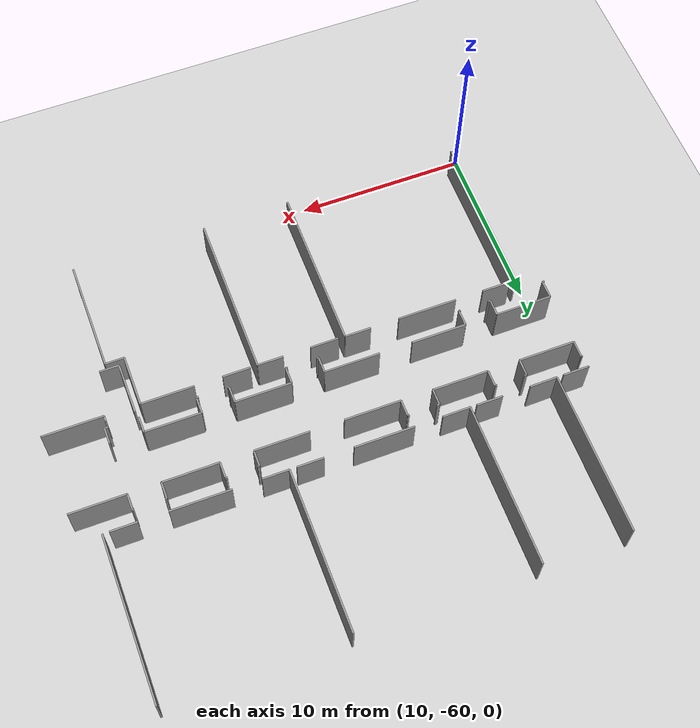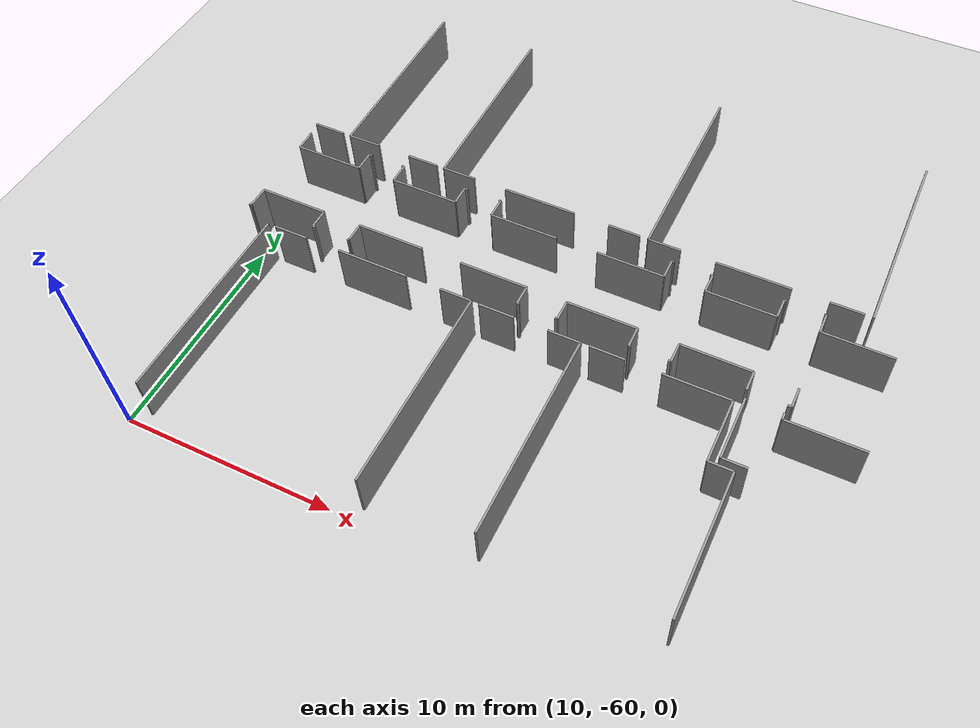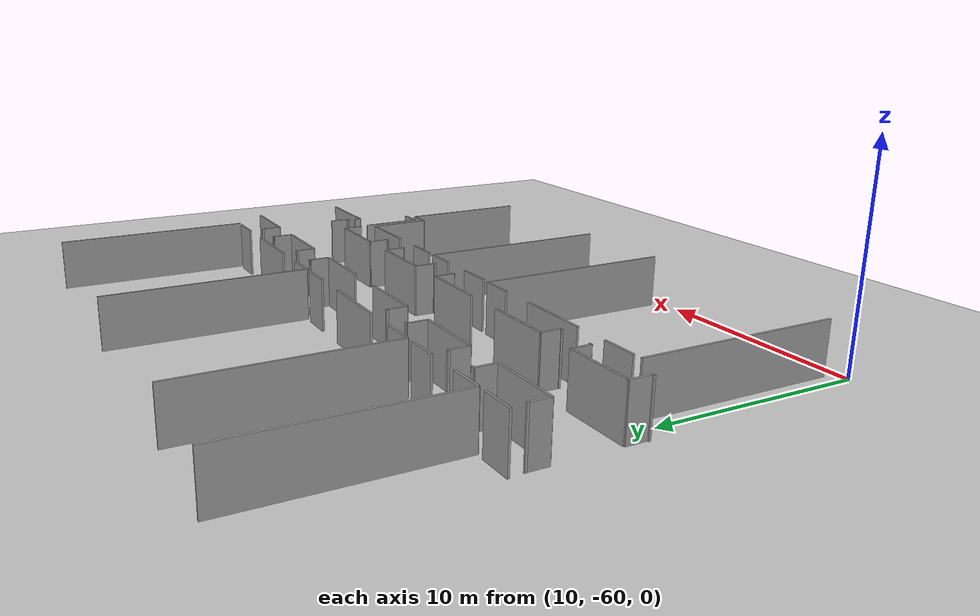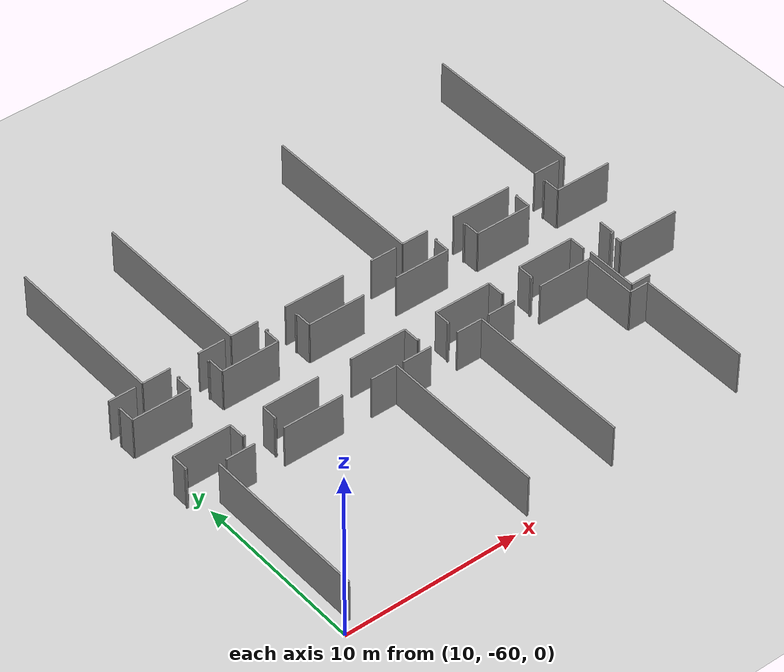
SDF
<sdf version="1.6">
 <world name="default">
  <model name="ground_plane">
   <static>1</static>
   <link name="link">
    <collision name="collision">
     <geometry><plane><normal>0 0 1</normal><size>100 100</size></plane></geometry>
     <surface><friction><ode><mu>100</mu><mu2>50</mu2></ode></friction></surface>
    </collision>
    <visual name="visual">
     <cast_shadows>0</cast_shadows>
     <geometry><plane><normal>0 0 1</normal><size>100 100</size></plane></geometry>
     <material>
      <script><uri>file://media/materials/scripts/gazebo.material</uri><name>Gazebo/Grey</name></script>
     </material>
    </visual>
   </link>
  </model>
  <model name="0510045922_A-40">
   <static>1</static>
   <link name="Wall_1510">
    <collision name="Wall_1510_Collision">
     <geometry><box><size>9.59369638432 0.1 2.5</size></box></geometry>
     <pose>4.79684819216 0 1.25 0 0 0</pose>
    </collision>
    <visual name="Wall_1510_Visual">
     <pose>4.79684819216 0 1.25 0 0 0</pose>
     <geometry><box><size>9.59369638432 0.1 2.5</size></box></geometry>
     <material>
      <script><uri>file://media/materials/scripts/gazebo.material</uri><name>Gazebo/Grey</name></script>
      <ambient>1 1 1 1</ambient>
     </material>
    </visual>
    <pose>144.869593951 -151.004232065 0 0 0 -1.57079632679</pose>
   </link>
   <link name="Wall_1514">
    <collision name="Wall_1514_Collision">
     <geometry><box><size>1.66283281439 0.1 2.5</size></box></geometry>
     <pose>0.831416407193 0 1.25 0 0 0</pose>
    </collision>
    <visual name="Wall_1514_Visual">
     <pose>0.831416407193 0 1.25 0 0 0</pose>
     <geometry><box><size>1.66283281439 0.1 2.5</size></box></geometry>
     <material>
      <script><uri>file://media/materials/scripts/gazebo.material</uri><name>Gazebo/Grey</name></script>
      <ambient>1 1 1 1</ambient>
     </material>
    </visual>
    <pose>145.278312258 -150.984151998 0 0 0 0.0</pose>
   </link>
   <link name="Wall_1515">
    <collision name="Wall_1515_Collision">
     <geometry><box><size>3.49037300629 0.1 2.5</size></box></geometry>
     <pose>1.74518650315 0 1.25 0 0 0</pose>
    </collision>
    <visual name="Wall_1515_Visual">
     <pose>1.74518650315 0 1.25 0 0 0</pose>
     <geometry><box><size>3.49037300629 0.1 2.5</size></box></geometry>
     <material>
      <script><uri>file://media/materials/scripts/gazebo.material</uri><name>Gazebo/Grey</name></script>
      <ambient>1 1 1 1</ambient>
     </material>
    </visual>
    <pose>148.626345555 -150.984151998 0 0 0 0.0</pose>
   </link>
   <link name="Wall_1516">
    <collision name="Wall_1516_Collision">
     <geometry><box><size>1.54845269111 0.1 2.5</size></box></geometry>
     <pose>0.774226345555 0 1.25 0 0 0</pose>
    </collision>
    <visual name="Wall_1516_Visual">
     <pose>0.774226345555 0 1.25 0 0 0</pose>
     <geometry><box><size>1.54845269111 0.1 2.5</size></box></geometry>
     <material>
      <script><uri>file://media/materials/scripts/gazebo.material</uri><name>Gazebo/Grey</name></script>
      <ambient>1 1 1 1</ambient>
     </material>
    </visual>
    <pose>153.827845206 -150.984151998 0 0 0 0.0</pose>
   </link>
   <link name="Wall_1517">
    <collision name="Wall_1517_Collision">
     <geometry><box><size>9.62546864078 0.1 2.5</size></box></geometry>
     <pose>4.81273432039 0 1.25 0 0 0</pose>
    </collision>
    <visual name="Wall_1517_Visual">
     <pose>4.81273432039 0 1.25 0 0 0</pose>
     <geometry><box><size>9.62546864078 0.1 2.5</size></box></geometry>
     <material>
      <script><uri>file://media/materials/scripts/gazebo.material</uri><name>Gazebo/Grey</name></script>
      <ambient>1 1 1 1</ambient>
     </material>
    </visual>
    <pose>155.376297897 -150.984151998 0 0 0 -1.57079632679</pose>
   </link>
   <link name="Wall_1522">
    <collision name="Wall_1522_Collision">
     <geometry><box><size>1.67935438775 0.1 2.5</size></box></geometry>
     <pose>0.839677193874 0 1.25 0 0 0</pose>
    </collision>
    <visual name="Wall_1522_Visual">
     <pose>0.839677193874 0 1.25 0 0 0</pose>
     <geometry><box><size>1.67935438775 0.1 2.5</size></box></geometry>
     <material>
      <script><uri>file://media/materials/scripts/gazebo.material</uri><name>Gazebo/Grey</name></script>
      <ambient>1 1 1 1</ambient>
     </material>
    </visual>
    <pose>155.755785728 -151.005757133 0 0 0 0.0</pose>
   </link>
   <link name="Wall_1523">
    <collision name="Wall_1523_Collision">
     <geometry><box><size>1.52684755671 0.1 2.5</size></box></geometry>
     <pose>0.763423778357 0 1.25 0 0 0</pose>
    </collision>
    <visual name="Wall_1523_Visual">
     <pose>0.763423778357 0 1.25 0 0 0</pose>
     <geometry><box><size>1.52684755671 0.1 2.5</size></box></geometry>
     <material>
      <script><uri>file://media/materials/scripts/gazebo.material</uri><name>Gazebo/Grey</name></script>
      <ambient>1 1 1 1</ambient>
     </material>
    </visual>
    <pose>159.054762661 -151.005757133 0 0 0 0.0</pose>
   </link>
   <link name="Wall_1524">
    <collision name="Wall_1524_Collision">
     <geometry><box><size>9.59623816483 0.1 2.5</size></box></geometry>
     <pose>4.79811908242 0 1.25 0 0 0</pose>
    </collision>
    <visual name="Wall_1524_Visual">
     <pose>4.79811908242 0 1.25 0 0 0</pose>
     <geometry><box><size>9.59623816483 0.1 2.5</size></box></geometry>
     <material>
      <script><uri>file://media/materials/scripts/gazebo.material</uri><name>Gazebo/Grey</name></script>
      <ambient>1 1 1 1</ambient>
     </material>
    </visual>
    <pose>160.581610218 -151.005757133 0 0 0 -1.57079632679</pose>
   </link>
   <link name="Wall_1528">
    <collision name="Wall_1528_Collision">
     <geometry><box><size>1.63029802377 0.1 2.5</size></box></geometry>
     <pose>0.815149011883 0 1.25 0 0 0</pose>
    </collision>
    <visual name="Wall_1528_Visual">
     <pose>0.815149011883 0 1.25 0 0 0</pose>
     <geometry><box><size>1.63029802377 0.1 2.5</size></box></geometry>
     <material>
      <script><uri>file://media/materials/scripts/gazebo.material</uri><name>Gazebo/Grey</name></script>
      <ambient>1 1 1 1</ambient>
     </material>
    </visual>
    <pose>160.998716401 -150.995590011 0 0 0 0.0</pose>
   </link>
   <link name="Wall_1529">
    <collision name="Wall_1529_Collision">
     <geometry><box><size>3.11469784584 0.1 2.5</size></box></geometry>
     <pose>1.55734892292 0 1.25 0 0 0</pose>
    </collision>
    <visual name="Wall_1529_Visual">
     <pose>1.55734892292 0 1.25 0 0 0</pose>
     <geometry><box><size>3.11469784584 0.1 2.5</size></box></geometry>
     <material>
      <script><uri>file://media/materials/scripts/gazebo.material</uri><name>Gazebo/Grey</name></script>
      <ambient>1 1 1 1</ambient>
     </material>
    </visual>
    <pose>164.271512995 -150.995590011 0 0 0 0.0</pose>
   </link>
   <link name="Wall_1530">
    <collision name="Wall_1530_Collision">
     <geometry><box><size>3.04835737434 0.1 2.5</size></box></geometry>
     <pose>1.52417868717 0 1.25 0 0 0</pose>
    </collision>
    <visual name="Wall_1530_Visual">
     <pose>1.52417868717 0 1.25 0 0 0</pose>
     <geometry><box><size>3.04835737434 0.1 2.5</size></box></geometry>
     <material>
      <script><uri>file://media/materials/scripts/gazebo.material</uri><name>Gazebo/Grey</name></script>
      <ambient>1 1 1 1</ambient>
     </material>
    </visual>
    <pose>167.386210841 -150.995590011 0 0 0 -1.57079632679</pose>
   </link>
   <link name="Wall_1531">
    <collision name="Wall_1531_Collision">
     <geometry><box><size>1.11787507149 0.1 2.5</size></box></geometry>
     <pose>0.558937535744 0 1.25 0 0 0</pose>
    </collision>
    <visual name="Wall_1531_Visual">
     <pose>0.558937535744 0 1.25 0 0 0</pose>
     <geometry><box><size>1.11787507149 0.1 2.5</size></box></geometry>
     <material>
      <script><uri>file://media/materials/scripts/gazebo.material</uri><name>Gazebo/Grey</name></script>
      <ambient>1 1 1 1</ambient>
     </material>
    </visual>
    <pose>167.386210841 -154.043947385 0 0 0 0.0</pose>
   </link>
   <link name="Wall_1532">
    <collision name="Wall_1532_Collision">
     <geometry><box><size>6.53923873674 0.1 2.5</size></box></geometry>
     <pose>3.26961936837 0 1.25 0 0 0</pose>
    </collision>
    <visual name="Wall_1532_Visual">
     <pose>3.26961936837 0 1.25 0 0 0</pose>
     <geometry><box><size>6.53923873674 0.1 2.5</size></box></geometry>
     <material>
      <script><uri>file://media/materials/scripts/gazebo.material</uri><name>Gazebo/Grey</name></script>
      <ambient>1 1 1 1</ambient>
     </material>
    </visual>
    <pose>168.504085912 -154.043947385 0 0 0 -1.57079632679</pose>
   </link>
   <link name="Wall_1537">
    <collision name="Wall_1537_Collision">
     <geometry><box><size>1.14837643769 0.1 2.5</size></box></geometry>
     <pose>0.574188218847 0 1.25 0 0 0</pose>
    </collision>
    <visual name="Wall_1537_Visual">
     <pose>0.574188218847 0 1.25 0 0 0</pose>
     <geometry><box><size>1.14837643769 0.1 2.5</size></box></geometry>
     <material>
      <script><uri>file://media/materials/scripts/gazebo.material</uri><name>Gazebo/Grey</name></script>
      <ambient>1 1 1 1</ambient>
     </material>
    </visual>
    <pose>168.943813942 -153.682760374 0 0 0 3.14159265359</pose>
   </link>
   <link name="Wall_1538">
    <collision name="Wall_1538_Collision">
     <geometry><box><size>3.01760183008 0.1 2.5</size></box></geometry>
     <pose>1.50880091504 0 1.25 0 0 0</pose>
    </collision>
    <visual name="Wall_1538_Visual">
     <pose>1.50880091504 0 1.25 0 0 0</pose>
     <geometry><box><size>3.01760183008 0.1 2.5</size></box></geometry>
     <material>
      <script><uri>file://media/materials/scripts/gazebo.material</uri><name>Gazebo/Grey</name></script>
      <ambient>1 1 1 1</ambient>
     </material>
    </visual>
    <pose>167.795437504 -153.682760374 0 0 0 1.57079632679</pose>
   </link>
   <link name="Wall_1539">
    <collision name="Wall_1539_Collision">
     <geometry><box><size>0.326364618415 0.1 2.5</size></box></geometry>
     <pose>0.163182309208 0 1.25 0 0 0</pose>
    </collision>
    <visual name="Wall_1539_Visual">
     <pose>0.163182309208 0 1.25 0 0 0</pose>
     <geometry><box><size>0.326364618415 0.1 2.5</size></box></geometry>
     <material>
      <script><uri>file://media/materials/scripts/gazebo.material</uri><name>Gazebo/Grey</name></script>
      <ambient>1 1 1 1</ambient>
     </material>
    </visual>
    <pose>169.454966004 -150.665158544 0 0 0 -1.57079632679</pose>
   </link>
   <link name="Wall_1540">
    <collision name="Wall_1540_Collision">
     <geometry><box><size>3.56865984622 0.1 2.5</size></box></geometry>
     <pose>1.78432992311 0 1.25 0 0 0</pose>
    </collision>
    <visual name="Wall_1540_Visual">
     <pose>1.78432992311 0 1.25 0 0 0</pose>
     <geometry><box><size>3.56865984622 0.1 2.5</size></box></geometry>
     <material>
      <script><uri>file://media/materials/scripts/gazebo.material</uri><name>Gazebo/Grey</name></script>
      <ambient>1 1 1 1</ambient>
     </material>
    </visual>
    <pose>169.454966004 -150.991523162 0 0 0 0.0</pose>
   </link>
   <link name="Wall_1551">
    <collision name="Wall_1551_Collision">
     <geometry><box><size>9.61657240897 0.1 2.5</size></box></geometry>
     <pose>4.80828620449 0 1.25 0 0 0</pose>
    </collision>
    <visual name="Wall_1551_Visual">
     <pose>4.80828620449 0 1.25 0 0 0</pose>
     <geometry><box><size>9.61657240897 0.1 2.5</size></box></geometry>
     <material>
      <script><uri>file://media/materials/scripts/gazebo.material</uri><name>Gazebo/Grey</name></script>
      <ambient>1 1 1 1</ambient>
     </material>
    </visual>
    <pose>171.458651585 -144.473127025 0 0 0 1.57079632679</pose>
   </link>
   <link name="Wall_1559">
    <collision name="Wall_1559_Collision">
     <geometry><box><size>9.59242549406 0.1 2.5</size></box></geometry>
     <pose>4.79621274703 0 1.25 0 0 0</pose>
    </collision>
    <visual name="Wall_1559_Visual">
     <pose>4.79621274703 0 1.25 0 0 0</pose>
     <geometry><box><size>9.59242549406 0.1 2.5</size></box></geometry>
     <material>
      <script><uri>file://media/materials/scripts/gazebo.material</uri><name>Gazebo/Grey</name></script>
      <ambient>1 1 1 1</ambient>
     </material>
    </visual>
    <pose>161.023371672 -144.456097096 0 0 0 1.57079632679</pose>
   </link>
   <link name="Wall_1564">
    <collision name="Wall_1564_Collision">
     <geometry><box><size>1.5759039207 0.1 2.5</size></box></geometry>
     <pose>0.787951960348 0 1.25 0 0 0</pose>
    </collision>
    <visual name="Wall_1564_Visual">
     <pose>0.787951960348 0 1.25 0 0 0</pose>
     <geometry><box><size>1.5759039207 0.1 2.5</size></box></geometry>
     <material>
      <script><uri>file://media/materials/scripts/gazebo.material</uri><name>Gazebo/Grey</name></script>
      <ambient>1 1 1 1</ambient>
     </material>
    </visual>
    <pose>171.081451357 -144.453555315 0 0 0 3.14159265359</pose>
   </link>
   <link name="Wall_1565">
    <collision name="Wall_1565_Collision">
     <geometry><box><size>3.54807142403 0.1 2.5</size></box></geometry>
     <pose>1.77403571202 0 1.25 0 0 0</pose>
    </collision>
    <visual name="Wall_1565_Visual">
     <pose>1.77403571202 0 1.25 0 0 0</pose>
     <geometry><box><size>3.54807142403 0.1 2.5</size></box></geometry>
     <material>
      <script><uri>file://media/materials/scripts/gazebo.material</uri><name>Gazebo/Grey</name></script>
      <ambient>1 1 1 1</ambient>
     </material>
    </visual>
    <pose>167.804333736 -144.453555315 0 0 0 3.14159265359</pose>
   </link>
   <link name="Wall_1566">
    <collision name="Wall_1566_Collision">
     <geometry><box><size>1.57387254875 0.1 2.5</size></box></geometry>
     <pose>0.786936274376 0 1.25 0 0 0</pose>
    </collision>
    <visual name="Wall_1566_Visual">
     <pose>0.786936274376 0 1.25 0 0 0</pose>
     <geometry><box><size>1.57387254875 0.1 2.5</size></box></geometry>
     <material>
      <script><uri>file://media/materials/scripts/gazebo.material</uri><name>Gazebo/Grey</name></script>
      <ambient>1 1 1 1</ambient>
     </material>
    </visual>
    <pose>162.597242168 -144.453555315 0 0 0 -3.13997766791</pose>
   </link>
   <link name="Wall_1567">
    <collision name="Wall_1567_Collision">
     <geometry><box><size>9.60055919171 0.1 2.5</size></box></geometry>
     <pose>4.80027959586 0 1.25 0 0 0</pose>
    </collision>
    <visual name="Wall_1567_Visual">
     <pose>4.80027959586 0 1.25 0 0 0</pose>
     <geometry><box><size>9.60055919171 0.1 2.5</size></box></geometry>
     <material>
      <script><uri>file://media/materials/scripts/gazebo.material</uri><name>Gazebo/Grey</name></script>
      <ambient>1 1 1 1</ambient>
     </material>
    </visual>
    <pose>150.495316769 -144.468043464 0 0 0 1.57079632679</pose>
   </link>
   <link name="Wall_1572">
    <collision name="Wall_1572_Collision">
     <geometry><box><size>1.55607803266 0.1 2.5</size></box></geometry>
     <pose>0.778039016331 0 1.25 0 0 0</pose>
    </collision>
    <visual name="Wall_1572_Visual">
     <pose>0.778039016331 0 1.25 0 0 0</pose>
     <geometry><box><size>1.55607803266 0.1 2.5</size></box></geometry>
     <material>
      <script><uri>file://media/materials/scripts/gazebo.material</uri><name>Gazebo/Grey</name></script>
      <ambient>1 1 1 1</ambient>
     </material>
    </visual>
    <pose>160.614399187 -144.455080384 0 0 0 3.14159265359</pose>
   </link>
   <link name="Wall_1573">
    <collision name="Wall_1573_Collision">
     <geometry><box><size>3.55900108026 0.1 2.5</size></box></geometry>
     <pose>1.77950054013 0 1.25 0 0 0</pose>
    </collision>
    <visual name="Wall_1573_Visual">
     <pose>1.77950054013 0 1.25 0 0 0</pose>
     <geometry><box><size>3.55900108026 0.1 2.5</size></box></geometry>
     <material>
      <script><uri>file://media/materials/scripts/gazebo.material</uri><name>Gazebo/Grey</name></script>
      <ambient>1 1 1 1</ambient>
     </material>
    </visual>
    <pose>157.329910402 -144.455080384 0 0 0 3.14159265359</pose>
   </link>
   <link name="Wall_1574">
    <collision name="Wall_1574_Collision">
     <geometry><box><size>1.63619547104 0.1 2.5</size></box></geometry>
     <pose>0.81809773552 0 1.25 0 0 0</pose>
    </collision>
    <visual name="Wall_1574_Visual">
     <pose>0.81809773552 0 1.25 0 0 0</pose>
     <geometry><box><size>1.63619547104 0.1 2.5</size></box></geometry>
     <material>
      <script><uri>file://media/materials/scripts/gazebo.material</uri><name>Gazebo/Grey</name></script>
      <ambient>1 1 1 1</ambient>
     </material>
    </visual>
    <pose>152.131460888 -144.455080384 0 0 0 -3.13366987389</pose>
   </link>
   <link name="Wall_1575">
    <collision name="Wall_1575_Collision">
     <geometry><box><size>9.61987672364 0.1 2.5</size></box></geometry>
     <pose>4.80993836182 0 1.25 0 0 0</pose>
    </collision>
    <visual name="Wall_1575_Visual">
     <pose>4.80993836182 0 1.25 0 0 0</pose>
     <geometry><box><size>9.61987672364 0.1 2.5</size></box></geometry>
     <material>
      <script><uri>file://media/materials/scripts/gazebo.material</uri><name>Gazebo/Grey</name></script>
      <ambient>1 1 1 1</ambient>
     </material>
    </visual>
    <pose>145.276024655 -144.475922984 0 0 0 1.57079632679</pose>
   </link>
   <link name="Wall_1579">
    <collision name="Wall_1579_Collision">
     <geometry><box><size>1.54362330813 0.1 2.5</size></box></geometry>
     <pose>0.771811654064 0 1.25 0 0 0</pose>
    </collision>
    <visual name="Wall_1579_Visual">
     <pose>0.771811654064 0 1.25 0 0 0</pose>
     <geometry><box><size>1.54362330813 0.1 2.5</size></box></geometry>
     <material>
      <script><uri>file://media/materials/scripts/gazebo.material</uri><name>Gazebo/Grey</name></script>
      <ambient>1 1 1 1</ambient>
     </material>
    </visual>
    <pose>150.108966131 -144.458638877 0 0 0 3.14159265359</pose>
   </link>
   <link name="Wall_1580">
    <collision name="Wall_1580_Collision">
     <geometry><box><size>1.63369377195 0.1 2.5</size></box></geometry>
     <pose>0.816846885977 0 1.25 0 0 0</pose>
    </collision>
    <visual name="Wall_1580_Visual">
     <pose>0.816846885977 0 1.25 0 0 0</pose>
     <geometry><box><size>1.63369377195 0.1 2.5</size></box></geometry>
     <material>
      <script><uri>file://media/materials/scripts/gazebo.material</uri><name>Gazebo/Grey</name></script>
      <ambient>1 1 1 1</ambient>
     </material>
    </visual>
    <pose>146.909626994 -144.458638877 0 0 0 -3.13101268428</pose>
   </link>
   <link name="Wall_1585">
    <collision name="Wall_1585_Collision">
     <geometry><box><size>1.55226536189 0.1 2.5</size></box></geometry>
     <pose>0.776132680943 0 1.25 0 0 0</pose>
    </collision>
    <visual name="Wall_1585_Visual">
     <pose>0.776132680943 0 1.25 0 0 0</pose>
     <geometry><box><size>1.55226536189 0.1 2.5</size></box></geometry>
     <material>
      <script><uri>file://media/materials/scripts/gazebo.material</uri><name>Gazebo/Grey</name></script>
      <ambient>1 1 1 1</ambient>
     </material>
    </visual>
    <pose>144.872135731 -144.470331067 0 0 0 3.14159265359</pose>
   </link>
   <link name="Wall_1611">
    <collision name="Wall_1611_Collision">
     <geometry><box><size>0.0765075935693 0.1 2.5</size></box></geometry>
     <pose>0.0382537967847 0 1.25 0 0 0</pose>
    </collision>
    <visual name="Wall_1611_Visual">
     <pose>0.0382537967847 0 1.25 0 0 0</pose>
     <geometry><box><size>0.0765075935693 0.1 2.5</size></box></geometry>
     <material>
      <script><uri>file://media/materials/scripts/gazebo.material</uri><name>Gazebo/Grey</name></script>
      <ambient>1 1 1 1</ambient>
     </material>
    </visual>
    <pose>143.390531868 -145.180758721 0 0 0 0.0</pose>
   </link>
   <link name="Wall_1612">
    <collision name="Wall_1612_Collision">
     <geometry><box><size>0.988244265108 0.1 2.5</size></box></geometry>
     <pose>0.494122132554 0 1.25 0 0 0</pose>
    </collision>
    <visual name="Wall_1612_Visual">
     <pose>0.494122132554 0 1.25 0 0 0</pose>
     <geometry><box><size>0.988244265108 0.1 2.5</size></box></geometry>
     <material>
      <script><uri>file://media/materials/scripts/gazebo.material</uri><name>Gazebo/Grey</name></script>
      <ambient>1 1 1 1</ambient>
     </material>
    </visual>
    <pose>143.467039461 -145.180758721 0 0 0 -1.57079632679</pose>
   </link>
   <link name="Wall_1613">
    <collision name="Wall_1613_Collision">
     <geometry><box><size>3.32464891657 0.1 2.5</size></box></geometry>
     <pose>1.66232445828 0 1.25 0 0 0</pose>
    </collision>
    <visual name="Wall_1613_Visual">
     <pose>1.66232445828 0 1.25 0 0 0</pose>
     <geometry><box><size>3.32464891657 0.1 2.5</size></box></geometry>
     <material>
      <script><uri>file://media/materials/scripts/gazebo.material</uri><name>Gazebo/Grey</name></script>
      <ambient>1 1 1 1</ambient>
     </material>
    </visual>
    <pose>143.467039461 -146.169002987 0 0 0 0.0</pose>
   </link>
   <link name="Wall_1614">
    <collision name="Wall_1614_Collision">
     <geometry><box><size>0.977568786935 0.1 2.5</size></box></geometry>
     <pose>0.488784393468 0 1.25 0 0 0</pose>
    </collision>
    <visual name="Wall_1614_Visual">
     <pose>0.488784393468 0 1.25 0 0 0</pose>
     <geometry><box><size>0.977568786935 0.1 2.5</size></box></geometry>
     <material>
      <script><uri>file://media/materials/scripts/gazebo.material</uri><name>Gazebo/Grey</name></script>
      <ambient>1 1 1 1</ambient>
     </material>
    </visual>
    <pose>146.791688378 -146.169002987 0 0 0 1.57079632679</pose>
   </link>
   <link name="Wall_1615">
    <collision name="Wall_1615_Collision">
     <geometry><box><size>0.144627311432 0.1 2.5</size></box></geometry>
     <pose>0.0723136557158 0 1.25 0 0 0</pose>
    </collision>
    <visual name="Wall_1615_Visual">
     <pose>0.0723136557158 0 1.25 0 0 0</pose>
     <geometry><box><size>0.144627311432 0.1 2.5</size></box></geometry>
     <material>
      <script><uri>file://media/materials/scripts/gazebo.material</uri><name>Gazebo/Grey</name></script>
      <ambient>1 1 1 1</ambient>
     </material>
    </visual>
    <pose>146.791688378 -145.1914342 0 0 0 0.0</pose>
   </link>
   <link name="Wall_1616">
    <collision name="Wall_1616_Collision">
     <geometry><box><size>0.118701150156 0.1 2.5</size></box></geometry>
     <pose>0.0593505750778 0 1.25 0 0 0</pose>
    </collision>
    <visual name="Wall_1616_Visual">
     <pose>0.0593505750778 0 1.25 0 0 0</pose>
     <geometry><box><size>0.118701150156 0.1 2.5</size></box></geometry>
     <material>
      <script><uri>file://media/materials/scripts/gazebo.material</uri><name>Gazebo/Grey</name></script>
      <ambient>1 1 1 1</ambient>
     </material>
    </visual>
    <pose>148.586693779 -145.1914342 0 0 0 0.0</pose>
   </link>
   <link name="Wall_1617">
    <collision name="Wall_1617_Collision">
     <geometry><box><size>0.972739403952 0.1 2.5</size></box></geometry>
     <pose>0.486369701976 0 1.25 0 0 0</pose>
    </collision>
    <visual name="Wall_1617_Visual">
     <pose>0.486369701976 0 1.25 0 0 0</pose>
     <geometry><box><size>0.972739403952 0.1 2.5</size></box></geometry>
     <material>
      <script><uri>file://media/materials/scripts/gazebo.material</uri><name>Gazebo/Grey</name></script>
      <ambient>1 1 1 1</ambient>
     </material>
    </visual>
    <pose>148.705394929 -145.1914342 0 0 0 -1.57079632679</pose>
   </link>
   <link name="Wall_1618">
    <collision name="Wall_1618_Collision">
     <geometry><box><size>3.30787316515 0.1 2.5</size></box></geometry>
     <pose>1.65393658258 0 1.25 0 0 0</pose>
    </collision>
    <visual name="Wall_1618_Visual">
     <pose>1.65393658258 0 1.25 0 0 0</pose>
     <geometry><box><size>3.30787316515 0.1 2.5</size></box></geometry>
     <material>
      <script><uri>file://media/materials/scripts/gazebo.material</uri><name>Gazebo/Grey</name></script>
      <ambient>1 1 1 1</ambient>
     </material>
    </visual>
    <pose>148.705394929 -146.164173604 0 0 0 0.0</pose>
   </link>
   <link name="Wall_1619">
    <collision name="Wall_1619_Collision">
     <geometry><box><size>0.955963652539 0.1 2.5</size></box></geometry>
     <pose>0.477981826269 0 1.25 0 0 0</pose>
    </collision>
    <visual name="Wall_1619_Visual">
     <pose>0.477981826269 0 1.25 0 0 0</pose>
     <geometry><box><size>0.955963652539 0.1 2.5</size></box></geometry>
     <material>
      <script><uri>file://media/materials/scripts/gazebo.material</uri><name>Gazebo/Grey</name></script>
      <ambient>1 1 1 1</ambient>
     </material>
    </visual>
    <pose>152.013268094 -146.164173604 0 0 0 1.57079632679</pose>
   </link>
   <link name="Wall_1620">
    <collision name="Wall_1620_Collision">
     <geometry><box><size>0.156319501811 0.1 2.5</size></box></geometry>
     <pose>0.0781597509055 0 1.25 0 0 0</pose>
    </collision>
    <visual name="Wall_1620_Visual">
     <pose>0.0781597509055 0 1.25 0 0 0</pose>
     <geometry><box><size>0.156319501811 0.1 2.5</size></box></geometry>
     <material>
      <script><uri>file://media/materials/scripts/gazebo.material</uri><name>Gazebo/Grey</name></script>
      <ambient>1 1 1 1</ambient>
     </material>
    </visual>
    <pose>152.013268094 -145.208209951 0 0 0 0.0</pose>
   </link>
   <link name="Wall_1621">
    <collision name="Wall_1621_Collision">
     <geometry><box><size>0.103450467052 0.1 2.5</size></box></geometry>
     <pose>0.0517252335261 0 1.25 0 0 0</pose>
    </collision>
    <visual name="Wall_1621_Visual">
     <pose>0.0517252335261 0 1.25 0 0 0</pose>
     <geometry><box><size>0.103450467052 0.1 2.5</size></box></geometry>
     <material>
      <script><uri>file://media/materials/scripts/gazebo.material</uri><name>Gazebo/Grey</name></script>
      <ambient>1 1 1 1</ambient>
     </material>
    </visual>
    <pose>153.802173222 -145.208209951 0 0 0 0.0</pose>
   </link>
   <link name="Wall_1622">
    <collision name="Wall_1622_Collision">
     <geometry><box><size>0.962318103832 0.1 2.5</size></box></geometry>
     <pose>0.481159051916 0 1.25 0 0 0</pose>
    </collision>
    <visual name="Wall_1622_Visual">
     <pose>0.481159051916 0 1.25 0 0 0</pose>
     <geometry><box><size>0.962318103832 0.1 2.5</size></box></geometry>
     <material>
      <script><uri>file://media/materials/scripts/gazebo.material</uri><name>Gazebo/Grey</name></script>
      <ambient>1 1 1 1</ambient>
     </material>
    </visual>
    <pose>153.905623689 -145.208209951 0 0 0 -1.57079632679</pose>
   </link>
   <link name="Wall_1623">
    <collision name="Wall_1623_Collision">
     <geometry><box><size>3.33278261422 0.1 2.5</size></box></geometry>
     <pose>1.66639130711 0 1.25 0 0 0</pose>
    </collision>
    <visual name="Wall_1623_Visual">
     <pose>1.66639130711 0 1.25 0 0 0</pose>
     <geometry><box><size>3.33278261422 0.1 2.5</size></box></geometry>
     <material>
      <script><uri>file://media/materials/scripts/gazebo.material</uri><name>Gazebo/Grey</name></script>
      <ambient>1 1 1 1</ambient>
     </material>
    </visual>
    <pose>153.905623689 -146.170528055 0 0 0 0.0</pose>
   </link>
   <link name="Wall_1624">
    <collision name="Wall_1624_Collision">
     <geometry><box><size>3.23060303743 0.1 2.5</size></box></geometry>
     <pose>1.61530151871 0 1.25 0 0 0</pose>
    </collision>
    <visual name="Wall_1624_Visual">
     <pose>1.61530151871 0 1.25 0 0 0</pose>
     <geometry><box><size>3.23060303743 0.1 2.5</size></box></geometry>
     <material>
      <script><uri>file://media/materials/scripts/gazebo.material</uri><name>Gazebo/Grey</name></script>
      <ambient>1 1 1 1</ambient>
     </material>
    </visual>
    <pose>159.230399695 -146.170528055 0 0 0 0.0</pose>
   </link>
   <link name="Wall_1625">
    <collision name="Wall_1625_Collision">
     <geometry><box><size>0.954438584228 0.1 2.5</size></box></geometry>
     <pose>0.477219292114 0 1.25 0 0 0</pose>
    </collision>
    <visual name="Wall_1625_Visual">
     <pose>0.477219292114 0 1.25 0 0 0</pose>
     <geometry><box><size>0.954438584228 0.1 2.5</size></box></geometry>
     <material>
      <script><uri>file://media/materials/scripts/gazebo.material</uri><name>Gazebo/Grey</name></script>
      <ambient>1 1 1 1</ambient>
     </material>
    </visual>
    <pose>162.461002732 -146.170528055 0 0 0 1.57079632679</pose>
   </link>
   <link name="Wall_1626">
    <collision name="Wall_1626_Collision">
     <geometry><box><size>0.119717862363 0.1 2.5</size></box></geometry>
     <pose>0.0598589311813 0 1.25 0 0 0</pose>
    </collision>
    <visual name="Wall_1626_Visual">
     <pose>0.0598589311813 0 1.25 0 0 0</pose>
     <geometry><box><size>0.119717862363 0.1 2.5</size></box></geometry>
     <material>
      <script><uri>file://media/materials/scripts/gazebo.material</uri><name>Gazebo/Grey</name></script>
      <ambient>1 1 1 1</ambient>
     </material>
    </visual>
    <pose>162.461002732 -145.216089471 0 0 0 0.0</pose>
   </link>
   <link name="Wall_1627">
    <collision name="Wall_1627_Collision">
     <geometry><box><size>0.105992247569 0.1 2.5</size></box></geometry>
     <pose>0.0529961237847 0 1.25 0 0 0</pose>
    </collision>
    <visual name="Wall_1627_Visual">
     <pose>0.0529961237847 0 1.25 0 0 0</pose>
     <geometry><box><size>0.105992247569 0.1 2.5</size></box></geometry>
     <material>
      <script><uri>file://media/materials/scripts/gazebo.material</uri><name>Gazebo/Grey</name></script>
      <ambient>1 1 1 1</ambient>
     </material>
    </visual>
    <pose>164.282696829 -145.216089471 0 0 0 0.0</pose>
   </link>
   <link name="Wall_1628">
    <collision name="Wall_1628_Collision">
     <geometry><box><size>0.945033996314 0.1 2.5</size></box></geometry>
     <pose>0.472516998157 0 1.25 0 0 0</pose>
    </collision>
    <visual name="Wall_1628_Visual">
     <pose>0.472516998157 0 1.25 0 0 0</pose>
     <geometry><box><size>0.945033996314 0.1 2.5</size></box></geometry>
     <material>
      <script><uri>file://media/materials/scripts/gazebo.material</uri><name>Gazebo/Grey</name></script>
      <ambient>1 1 1 1</ambient>
     </material>
    </visual>
    <pose>164.388689077 -145.216089471 0 0 0 -1.57079632679</pose>
   </link>
   <link name="Wall_1629">
    <collision name="Wall_1629_Collision">
     <geometry><box><size>3.29211412595 0.1 2.5</size></box></geometry>
     <pose>1.64605706297 0 1.25 0 0 0</pose>
    </collision>
    <visual name="Wall_1629_Visual">
     <pose>1.64605706297 0 1.25 0 0 0</pose>
     <geometry><box><size>3.29211412595 0.1 2.5</size></box></geometry>
     <material>
      <script><uri>file://media/materials/scripts/gazebo.material</uri><name>Gazebo/Grey</name></script>
      <ambient>1 1 1 1</ambient>
     </material>
    </visual>
    <pose>164.388689077 -146.161123467 0 0 0 0.0</pose>
   </link>
   <link name="Wall_1630">
    <collision name="Wall_1630_Collision">
     <geometry><box><size>0.982143991866 0.1 2.5</size></box></geometry>
     <pose>0.491071995933 0 1.25 0 0 0</pose>
    </collision>
    <visual name="Wall_1630_Visual">
     <pose>0.491071995933 0 1.25 0 0 0</pose>
     <geometry><box><size>0.982143991866 0.1 2.5</size></box></geometry>
     <material>
      <script><uri>file://media/materials/scripts/gazebo.material</uri><name>Gazebo/Grey</name></script>
      <ambient>1 1 1 1</ambient>
     </material>
    </visual>
    <pose>167.680803203 -146.161123467 0 0 0 1.57079632679</pose>
   </link>
   <link name="Wall_1631">
    <collision name="Wall_1631_Collision">
     <geometry><box><size>0.101162864587 0.1 2.5</size></box></geometry>
     <pose>0.0505814322933 0 1.25 0 0 0</pose>
    </collision>
    <visual name="Wall_1631_Visual">
     <pose>0.0505814322933 0 1.25 0 0 0</pose>
     <geometry><box><size>0.101162864587 0.1 2.5</size></box></geometry>
     <material>
      <script><uri>file://media/materials/scripts/gazebo.material</uri><name>Gazebo/Grey</name></script>
      <ambient>1 1 1 1</ambient>
     </material>
    </visual>
    <pose>167.680803203 -145.178979475 0 0 0 0.0</pose>
   </link>
   <link name="Wall_1632">
    <collision name="Wall_1632_Collision">
     <geometry><box><size>0.0874372497935 0.1 2.5</size></box></geometry>
     <pose>0.0437186248967 0 1.25 0 0 0</pose>
    </collision>
    <visual name="Wall_1632_Visual">
     <pose>0.0437186248967 0 1.25 0 0 0</pose>
     <geometry><box><size>0.0874372497935 0.1 2.5</size></box></geometry>
     <material>
      <script><uri>file://media/materials/scripts/gazebo.material</uri><name>Gazebo/Grey</name></script>
      <ambient>1 1 1 1</ambient>
     </material>
    </visual>
    <pose>169.489025863 -145.178979475 0 0 0 0.0</pose>
   </link>
   <link name="Wall_1633">
    <collision name="Wall_1633_Collision">
     <geometry><box><size>0.979093855246 0.1 2.5</size></box></geometry>
     <pose>0.489546927623 0 1.25 0 0 0</pose>
    </collision>
    <visual name="Wall_1633_Visual">
     <pose>0.489546927623 0 1.25 0 0 0</pose>
     <geometry><box><size>0.979093855246 0.1 2.5</size></box></geometry>
     <material>
      <script><uri>file://media/materials/scripts/gazebo.material</uri><name>Gazebo/Grey</name></script>
      <ambient>1 1 1 1</ambient>
     </material>
    </visual>
    <pose>169.576463112 -145.178979475 0 0 0 -1.57079632679</pose>
   </link>
   <link name="Wall_1634">
    <collision name="Wall_1634_Collision">
     <geometry><box><size>3.30685645295 0.1 2.5</size></box></geometry>
     <pose>1.65342822647 0 1.25 0 0 0</pose>
    </collision>
    <visual name="Wall_1634_Visual">
     <pose>1.65342822647 0 1.25 0 0 0</pose>
     <geometry><box><size>3.30685645295 0.1 2.5</size></box></geometry>
     <material>
      <script><uri>file://media/materials/scripts/gazebo.material</uri><name>Gazebo/Grey</name></script>
      <ambient>1 1 1 1</ambient>
     </material>
    </visual>
    <pose>169.576463112 -146.15807333 0 0 0 0.0</pose>
   </link>
   <link name="Wall_1650">
    <collision name="Wall_1650_Collision">
     <geometry><box><size>0.96053885747 0.1 2.5</size></box></geometry>
     <pose>0.480269428735 0 1.25 0 0 0</pose>
    </collision>
    <visual name="Wall_1650_Visual">
     <pose>0.480269428735 0 1.25 0 0 0</pose>
     <geometry><box><size>0.96053885747 0.1 2.5</size></box></geometry>
     <material>
      <script><uri>file://media/materials/scripts/gazebo.material</uri><name>Gazebo/Grey</name></script>
      <ambient>1 1 1 1</ambient>
     </material>
    </visual>
    <pose>169.631111394 -149.301747474 0 0 0 -1.57079632679</pose>
   </link>
   <link name="Wall_1651">
    <collision name="Wall_1651_Collision">
     <geometry><box><size>0.187837580225 0.1 2.5</size></box></geometry>
     <pose>0.0939187901125 0 1.25 0 0 0</pose>
    </collision>
    <visual name="Wall_1651_Visual">
     <pose>0.0939187901125 0 1.25 0 0 0</pose>
     <geometry><box><size>0.187837580225 0.1 2.5</size></box></geometry>
     <material>
      <script><uri>file://media/materials/scripts/gazebo.material</uri><name>Gazebo/Grey</name></script>
      <ambient>1 1 1 1</ambient>
     </material>
    </visual>
    <pose>169.631111394 -150.262286332 0 0 0 3.14159265359</pose>
   </link>
   <link name="Wall_1652">
    <collision name="Wall_1652_Collision">
     <geometry><box><size>0.954946940332 0.1 2.5</size></box></geometry>
     <pose>0.477473470166 0 1.25 0 0 0</pose>
    </collision>
    <visual name="Wall_1652_Visual">
     <pose>0.477473470166 0 1.25 0 0 0</pose>
     <geometry><box><size>0.954946940332 0.1 2.5</size></box></geometry>
     <material>
      <script><uri>file://media/materials/scripts/gazebo.material</uri><name>Gazebo/Grey</name></script>
      <ambient>1 1 1 1</ambient>
     </material>
    </visual>
    <pose>167.695037174 -150.262286332 0 0 0 1.57079632679</pose>
   </link>
   <link name="Wall_1653">
    <collision name="Wall_1653_Collision">
     <geometry><box><size>3.31143165788 0.1 2.5</size></box></geometry>
     <pose>1.65571582894 0 1.25 0 0 0</pose>
    </collision>
    <visual name="Wall_1653_Visual">
     <pose>1.65571582894 0 1.25 0 0 0</pose>
     <geometry><box><size>3.31143165788 0.1 2.5</size></box></geometry>
     <material>
      <script><uri>file://media/materials/scripts/gazebo.material</uri><name>Gazebo/Grey</name></script>
      <ambient>1 1 1 1</ambient>
     </material>
    </visual>
    <pose>167.695037174 -149.307339391 0 0 0 3.14159265359</pose>
   </link>
   <link name="Wall_1654">
    <collision name="Wall_1654_Collision">
     <geometry><box><size>0.974010294211 0.1 2.5</size></box></geometry>
     <pose>0.487005147106 0 1.25 0 0 0</pose>
    </collision>
    <visual name="Wall_1654_Visual">
     <pose>0.487005147106 0 1.25 0 0 0</pose>
     <geometry><box><size>0.974010294211 0.1 2.5</size></box></geometry>
     <material>
      <script><uri>file://media/materials/scripts/gazebo.material</uri><name>Gazebo/Grey</name></script>
      <ambient>1 1 1 1</ambient>
     </material>
    </visual>
    <pose>164.383605516 -149.307339391 0 0 0 -1.57079632679</pose>
   </link>
   <link name="Wall_1655">
    <collision name="Wall_1655_Collision">
     <geometry><box><size>0.118701150156 0.1 2.5</size></box></geometry>
     <pose>0.0593505750778 0 1.25 0 0 0</pose>
    </collision>
    <visual name="Wall_1655_Visual">
     <pose>0.0593505750778 0 1.25 0 0 0</pose>
     <geometry><box><size>0.118701150156 0.1 2.5</size></box></geometry>
     <material>
      <script><uri>file://media/materials/scripts/gazebo.material</uri><name>Gazebo/Grey</name></script>
      <ambient>1 1 1 1</ambient>
     </material>
    </visual>
    <pose>164.383605516 -150.281349685 0 0 0 3.14159265359</pose>
   </link>
   <link name="Wall_1656">
    <collision name="Wall_1656_Collision">
     <geometry><box><size>0.0874372497935 0.1 2.5</size></box></geometry>
     <pose>0.0437186248967 0 1.25 0 0 0</pose>
    </collision>
    <visual name="Wall_1656_Visual">
     <pose>0.0437186248967 0 1.25 0 0 0</pose>
     <geometry><box><size>0.0874372497935 0.1 2.5</size></box></geometry>
     <material>
      <script><uri>file://media/materials/scripts/gazebo.material</uri><name>Gazebo/Grey</name></script>
      <ambient>1 1 1 1</ambient>
     </material>
    </visual>
    <pose>162.572332719 -150.281349685 0 0 0 3.14159265359</pose>
   </link>
   <link name="Wall_1657">
    <collision name="Wall_1657_Collision">
     <geometry><box><size>0.987227552901 0.1 2.5</size></box></geometry>
     <pose>0.49361377645 0 1.25 0 0 0</pose>
    </collision>
    <visual name="Wall_1657_Visual">
     <pose>0.49361377645 0 1.25 0 0 0</pose>
     <geometry><box><size>0.987227552901 0.1 2.5</size></box></geometry>
     <material>
      <script><uri>file://media/materials/scripts/gazebo.material</uri><name>Gazebo/Grey</name></script>
      <ambient>1 1 1 1</ambient>
     </material>
    </visual>
    <pose>162.484895469 -150.281349685 0 0 0 1.57079632679</pose>
   </link>
   <link name="Wall_1658">
    <collision name="Wall_1658_Collision">
     <geometry><box><size>3.31981953358 0.1 2.5</size></box></geometry>
     <pose>1.65990976679 0 1.25 0 0 0</pose>
    </collision>
    <visual name="Wall_1658_Visual">
     <pose>1.65990976679 0 1.25 0 0 0</pose>
     <geometry><box><size>3.31981953358 0.1 2.5</size></box></geometry>
     <material>
      <script><uri>file://media/materials/scripts/gazebo.material</uri><name>Gazebo/Grey</name></script>
      <ambient>1 1 1 1</ambient>
     </material>
    </visual>
    <pose>162.484895469 -149.294122133 0 0 0 3.14159265359</pose>
   </link>
   <link name="Wall_1659">
    <collision name="Wall_1659_Collision">
     <geometry><box><size>0.977568786935 0.1 2.5</size></box></geometry>
     <pose>0.488784393468 0 1.25 0 0 0</pose>
    </collision>
    <visual name="Wall_1659_Visual">
     <pose>0.488784393468 0 1.25 0 0 0</pose>
     <geometry><box><size>0.977568786935 0.1 2.5</size></box></geometry>
     <material>
      <script><uri>file://media/materials/scripts/gazebo.material</uri><name>Gazebo/Grey</name></script>
      <ambient>1 1 1 1</ambient>
     </material>
    </visual>
    <pose>159.165075936 -149.294122133 0 0 0 -1.57079632679</pose>
   </link>
   <link name="Wall_1660">
    <collision name="Wall_1660_Collision">
     <geometry><box><size>0.107008959776 0.1 2.5</size></box></geometry>
     <pose>0.0535044798882 0 1.25 0 0 0</pose>
    </collision>
    <visual name="Wall_1660_Visual">
     <pose>0.0535044798882 0 1.25 0 0 0</pose>
     <geometry><box><size>0.107008959776 0.1 2.5</size></box></geometry>
     <material>
      <script><uri>file://media/materials/scripts/gazebo.material</uri><name>Gazebo/Grey</name></script>
      <ambient>1 1 1 1</ambient>
     </material>
    </visual>
    <pose>159.165075936 -150.271690919 0 0 0 3.14159265359</pose>
   </link>
   <link name="Wall_1661">
    <collision name="Wall_1661_Collision">
     <geometry><box><size>0.113109233018 0.1 2.5</size></box></geometry>
     <pose>0.0565546165089 0 1.25 0 0 0</pose>
    </collision>
    <visual name="Wall_1661_Visual">
     <pose>0.0565546165089 0 1.25 0 0 0</pose>
     <geometry><box><size>0.113109233018 0.1 2.5</size></box></geometry>
     <material>
      <script><uri>file://media/materials/scripts/gazebo.material</uri><name>Gazebo/Grey</name></script>
      <ambient>1 1 1 1</ambient>
     </material>
    </visual>
    <pose>157.345669441 -150.271690919 0 0 0 3.14159265359</pose>
   </link>
   <link name="Wall_1662">
    <collision name="Wall_1662_Collision">
     <geometry><box><size>0.971214335642 0.1 2.5</size></box></geometry>
     <pose>0.485607167821 0 1.25 0 0 0</pose>
    </collision>
    <visual name="Wall_1662_Visual">
     <pose>0.485607167821 0 1.25 0 0 0</pose>
     <geometry><box><size>0.971214335642 0.1 2.5</size></box></geometry>
     <material>
      <script><uri>file://media/materials/scripts/gazebo.material</uri><name>Gazebo/Grey</name></script>
      <ambient>1 1 1 1</ambient>
     </material>
    </visual>
    <pose>157.232560208 -150.271690919 0 0 0 1.57079632679</pose>
   </link>
   <link name="Wall_1663">
    <collision name="Wall_1663_Collision">
     <geometry><box><size>3.29135159179 0.1 2.5</size></box></geometry>
     <pose>1.6456757959 0 1.25 0 0 0</pose>
    </collision>
    <visual name="Wall_1663_Visual">
     <pose>1.6456757959 0 1.25 0 0 0</pose>
     <geometry><box><size>3.29135159179 0.1 2.5</size></box></geometry>
     <material>
      <script><uri>file://media/materials/scripts/gazebo.material</uri><name>Gazebo/Grey</name></script>
      <ambient>1 1 1 1</ambient>
     </material>
    </visual>
    <pose>157.232560208 -149.300476584 0 0 0 3.14159265359</pose>
   </link>
   <link name="Wall_1664">
    <collision name="Wall_1664_Collision">
     <geometry><box><size>3.25119145962 0.1 2.5</size></box></geometry>
     <pose>1.62559572981 0 1.25 0 0 0</pose>
    </collision>
    <visual name="Wall_1664_Visual">
     <pose>1.62559572981 0 1.25 0 0 0</pose>
     <geometry><box><size>3.25119145962 0.1 2.5</size></box></geometry>
     <material>
      <script><uri>file://media/materials/scripts/gazebo.material</uri><name>Gazebo/Grey</name></script>
      <ambient>1 1 1 1</ambient>
     </material>
    </visual>
    <pose>151.983275084 -149.300476584 0 0 0 3.14159265359</pose>
   </link>
   <link name="Wall_1665">
    <collision name="Wall_1665_Collision">
     <geometry><box><size>0.949355023194 0.1 2.5</size></box></geometry>
     <pose>0.474677511597 0 1.25 0 0 0</pose>
    </collision>
    <visual name="Wall_1665_Visual">
     <pose>0.474677511597 0 1.25 0 0 0</pose>
     <geometry><box><size>0.949355023194 0.1 2.5</size></box></geometry>
     <material>
      <script><uri>file://media/materials/scripts/gazebo.material</uri><name>Gazebo/Grey</name></script>
      <ambient>1 1 1 1</ambient>
     </material>
    </visual>
    <pose>148.732083625 -149.300476584 0 0 0 -1.57079632679</pose>
   </link>
   <link name="Wall_1666">
    <collision name="Wall_1666_Collision">
     <geometry><box><size>0.0861663595349 0.1 2.5</size></box></geometry>
     <pose>0.0430831797674 0 1.25 0 0 0</pose>
    </collision>
    <visual name="Wall_1666_Visual">
     <pose>0.0430831797674 0 1.25 0 0 0</pose>
     <geometry><box><size>0.0861663595349 0.1 2.5</size></box></geometry>
     <material>
      <script><uri>file://media/materials/scripts/gazebo.material</uri><name>Gazebo/Grey</name></script>
      <ambient>1 1 1 1</ambient>
     </material>
    </visual>
    <pose>148.732083625 -150.249831607 0 0 0 3.14159265359</pose>
   </link>
   <link name="Wall_1667">
    <collision name="Wall_1667_Collision">
     <geometry><box><size>0.13115587469 0.1 2.5</size></box></geometry>
     <pose>0.0655779373451 0 1.25 0 0 0</pose>
    </collision>
    <visual name="Wall_1667_Visual">
     <pose>0.0655779373451 0 1.25 0 0 0</pose>
     <geometry><box><size>0.13115587469 0.1 2.5</size></box></geometry>
     <material>
      <script><uri>file://media/materials/scripts/gazebo.material</uri><name>Gazebo/Grey</name></script>
      <ambient>1 1 1 1</ambient>
     </material>
    </visual>
    <pose>146.930723772 -150.249831607 0 0 0 3.14159265359</pose>
   </link>
   <link name="Wall_1668">
    <collision name="Wall_1668_Collision">
     <geometry><box><size>0.95621783059 0.1 2.5</size></box></geometry>
     <pose>0.478108915295 0 1.25 0 0 0</pose>
    </collision>
    <visual name="Wall_1668_Visual">
     <pose>0.478108915295 0 1.25 0 0 0</pose>
     <geometry><box><size>0.95621783059 0.1 2.5</size></box></geometry>
     <material>
      <script><uri>file://media/materials/scripts/gazebo.material</uri><name>Gazebo/Grey</name></script>
      <ambient>1 1 1 1</ambient>
     </material>
    </visual>
    <pose>146.799567897 -150.249831607 0 0 0 1.57079632679</pose>
   </link>
   <link name="Wall_1669">
    <collision name="Wall_1669_Collision">
     <geometry><box><size>3.30507720658 0.1 2.5</size></box></geometry>
     <pose>1.65253860329 0 1.25 0 0 0</pose>
    </collision>
    <visual name="Wall_1669_Visual">
     <pose>1.65253860329 0 1.25 0 0 0</pose>
     <geometry><box><size>3.30507720658 0.1 2.5</size></box></geometry>
     <material>
      <script><uri>file://media/materials/scripts/gazebo.material</uri><name>Gazebo/Grey</name></script>
      <ambient>1 1 1 1</ambient>
     </material>
    </visual>
    <pose>146.799567897 -149.293613776 0 0 0 3.14159265359</pose>
   </link>
   <link name="Wall_1670">
    <collision name="Wall_1670_Collision">
     <geometry><box><size>1.03679227299 0.1 2.5</size></box></geometry>
     <pose>0.518396136494 0 1.25 0 0 0</pose>
    </collision>
    <visual name="Wall_1670_Visual">
     <pose>0.518396136494 0 1.25 0 0 0</pose>
     <geometry><box><size>1.03679227299 0.1 2.5</size></box></geometry>
     <material>
      <script><uri>file://media/materials/scripts/gazebo.material</uri><name>Gazebo/Grey</name></script>
      <ambient>1 1 1 1</ambient>
     </material>
    </visual>
    <pose>143.494490691 -149.293613776 0 0 0 -1.57079632679</pose>
   </link>
   <link name="Wall_1671">
    <collision name="Wall_1671_Collision">
     <geometry><box><size>0.110821630552 0.1 2.5</size></box></geometry>
     <pose>0.0554108152761 0 1.25 0 0 0</pose>
    </collision>
    <visual name="Wall_1671_Visual">
     <pose>0.0554108152761 0 1.25 0 0 0</pose>
     <geometry><box><size>0.110821630552 0.1 2.5</size></box></geometry>
     <material>
      <script><uri>file://media/materials/scripts/gazebo.material</uri><name>Gazebo/Grey</name></script>
      <ambient>1 1 1 1</ambient>
     </material>
    </visual>
    <pose>143.494490691 -150.330406049 0 0 0 3.14159265359</pose>
   </link>
   <pose>-134.15 101.210036856 0 0 0 0</pose>
  </model>
 </world>
</sdf>
